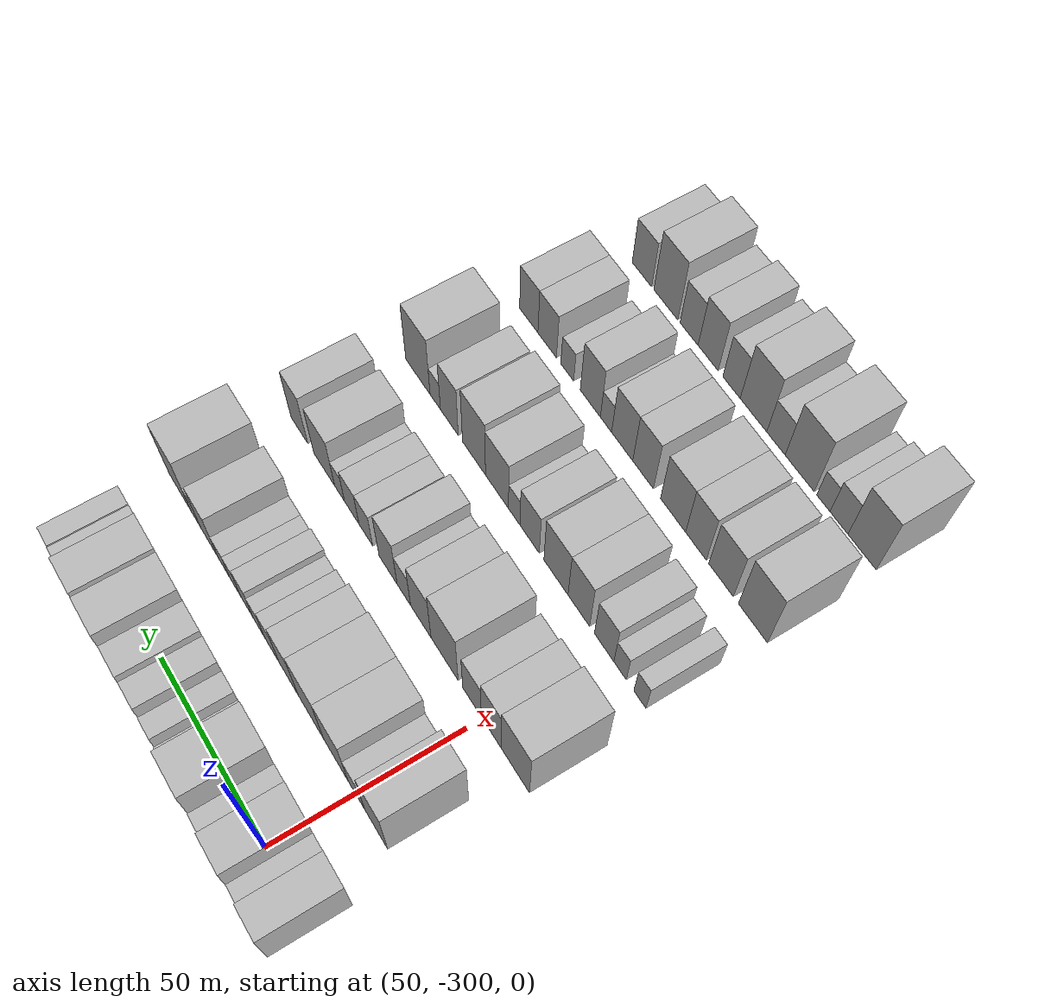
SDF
<sdf version="1.6">
 <world name="default">
  <model name="building_27">
   <static>1</static>
   <pose>50.0000 -315.9549 0 0.000000 0.000000 0.000000</pose>
   <link name="link">
    <pose>0 0 9.00 0 0 0</pose>
    <collision name="collision"><geometry><box><size>20.0000 8.7158 18.0000</size></box></geometry></collision>
    <visual name="visual">
     <cast_shadows>0</cast_shadows>
     <geometry><box><size>20.0000 8.7158 18.0000</size></box></geometry>
     <material>
      <script>
       <uri>model://HANNAS_wall/materials/scripts</uri>
       <uri>model://HANNAS_wall/materials/textures</uri>
       <name>vrc/HANNAS_wall</name>
      </script>
     </material>
    </visual>
   </link>
  </model>
  <model name="building_28">
   <static>1</static>
   <pose>50.0000 -308.7147 0 0.000000 0.000000 0.000000</pose>
   <link name="link">
    <pose>0 0 6.00 0 0 0</pose>
    <collision name="collision"><geometry><box><size>20.0000 5.7645 12.0000</size></box></geometry></collision>
    <visual name="visual">
     <cast_shadows>0</cast_shadows>
     <geometry><box><size>20.0000 5.7645 12.0000</size></box></geometry>
     <material>
      <script>
       <uri>model://HANNAS_wall/materials/scripts</uri>
       <uri>model://HANNAS_wall/materials/textures</uri>
       <name>vrc/HANNAS_wall</name>
      </script>
     </material>
    </visual>
   </link>
  </model>
  <model name="building_29">
   <static>1</static>
   <pose>50.0000 -300.9488 0 0.000000 0.000000 0.000000</pose>
   <link name="link">
    <pose>0 0 10.50 0 0 0</pose>
    <collision name="collision"><geometry><box><size>20.0000 9.7675 21.0000</size></box></geometry></collision>
    <visual name="visual">
     <cast_shadows>0</cast_shadows>
     <geometry><box><size>20.0000 9.7675 21.0000</size></box></geometry>
     <material>
      <script>
       <uri>model://HANNAS_wall/materials/scripts</uri>
       <uri>model://HANNAS_wall/materials/textures</uri>
       <name>vrc/HANNAS_wall</name>
      </script>
     </material>
    </visual>
   </link>
  </model>
  <model name="building_30">
   <static>1</static>
   <pose>50.0000 -292.9316 0 0.000000 0.000000 0.000000</pose>
   <link name="link">
    <pose>0 0 7.50 0 0 0</pose>
    <collision name="collision"><geometry><box><size>20.0000 6.2669 15.0000</size></box></geometry></collision>
    <visual name="visual">
     <cast_shadows>0</cast_shadows>
     <geometry><box><size>20.0000 6.2669 15.0000</size></box></geometry>
     <material>
      <script>
       <uri>model://HANNAS_wall/materials/scripts</uri>
       <uri>model://HANNAS_wall/materials/textures</uri>
       <name>vrc/HANNAS_wall</name>
      </script>
     </material>
    </visual>
   </link>
  </model>
  <model name="building_31">
   <static>1</static>
   <pose>50.0000 -283.1510 0 0.000000 0.000000 0.000000</pose>
   <link name="link">
    <pose>0 0 12.00 0 0 0</pose>
    <collision name="collision"><geometry><box><size>20.0000 11.2944 24.0000</size></box></geometry></collision>
    <visual name="visual">
     <cast_shadows>0</cast_shadows>
     <geometry><box><size>20.0000 11.2944 24.0000</size></box></geometry>
     <material>
      <script>
       <uri>model://HANNAS_wall/materials/scripts</uri>
       <uri>model://HANNAS_wall/materials/textures</uri>
       <name>vrc/HANNAS_wall</name>
      </script>
     </material>
    </visual>
   </link>
  </model>
  <model name="building_32">
   <static>1</static>
   <pose>50.0000 -274.9794 0 0.000000 0.000000 0.000000</pose>
   <link name="link">
    <pose>0 0 6.00 0 0 0</pose>
    <collision name="collision"><geometry><box><size>20.0000 5.0487 12.0000</size></box></geometry></collision>
    <visual name="visual">
     <cast_shadows>0</cast_shadows>
     <geometry><box><size>20.0000 5.0487 12.0000</size></box></geometry>
     <material>
      <script>
       <uri>model://HANNAS_wall/materials/scripts</uri>
       <uri>model://HANNAS_wall/materials/textures</uri>
       <name>vrc/HANNAS_wall</name>
      </script>
     </material>
    </visual>
   </link>
  </model>
  <model name="building_33">
   <static>1</static>
   <pose>50.0000 -267.6295 0 0.000000 0.000000 0.000000</pose>
   <link name="link">
    <pose>0 0 6.00 0 0 0</pose>
    <collision name="collision"><geometry><box><size>20.0000 5.6511 12.0000</size></box></geometry></collision>
    <visual name="visual">
     <cast_shadows>0</cast_shadows>
     <geometry><box><size>20.0000 5.6511 12.0000</size></box></geometry>
     <material>
      <script>
       <uri>model://HANNAS_wall/materials/scripts</uri>
       <uri>model://HANNAS_wall/materials/textures</uri>
       <name>vrc/HANNAS_wall</name>
      </script>
     </material>
    </visual>
   </link>
  </model>
  <model name="building_34">
   <static>1</static>
   <pose>50.0000 -260.2772 0 0.000000 0.000000 0.000000</pose>
   <link name="link">
    <pose>0 0 7.50 0 0 0</pose>
    <collision name="collision"><geometry><box><size>20.0000 7.0536 15.0000</size></box></geometry></collision>
    <visual name="visual">
     <cast_shadows>0</cast_shadows>
     <geometry><box><size>20.0000 7.0536 15.0000</size></box></geometry>
     <material>
      <script>
       <uri>model://HANNAS_wall/materials/scripts</uri>
       <uri>model://HANNAS_wall/materials/textures</uri>
       <name>vrc/HANNAS_wall</name>
      </script>
     </material>
    </visual>
   </link>
  </model>
  <model name="building_35">
   <static>1</static>
   <pose>50.0000 -252.6616 0 0.000000 0.000000 0.000000</pose>
   <link name="link">
    <pose>0 0 9.00 0 0 0</pose>
    <collision name="collision"><geometry><box><size>20.0000 8.1775 18.0000</size></box></geometry></collision>
    <visual name="visual">
     <cast_shadows>0</cast_shadows>
     <geometry><box><size>20.0000 8.1775 18.0000</size></box></geometry>
     <material>
      <script>
       <uri>model://HANNAS_wall/materials/scripts</uri>
       <uri>model://HANNAS_wall/materials/textures</uri>
       <name>vrc/HANNAS_wall</name>
      </script>
     </material>
    </visual>
   </link>
  </model>
  <model name="building_36">
   <static>1</static>
   <pose>50.0000 -243.4443 0 0.000000 0.000000 0.000000</pose>
   <link name="link">
    <pose>0 0 12.00 0 0 0</pose>
    <collision name="collision"><geometry><box><size>20.0000 10.2570 24.0000</size></box></geometry></collision>
    <visual name="visual">
     <cast_shadows>0</cast_shadows>
     <geometry><box><size>20.0000 10.2570 24.0000</size></box></geometry>
     <material>
      <script>
       <uri>model://HANNAS_wall/materials/scripts</uri>
       <uri>model://HANNAS_wall/materials/textures</uri>
       <name>vrc/HANNAS_wall</name>
      </script>
     </material>
    </visual>
   </link>
  </model>
  <model name="building_37">
   <static>1</static>
   <pose>50.0000 -232.4229 0 0.000000 0.000000 0.000000</pose>
   <link name="link">
    <pose>0 0 12.00 0 0 0</pose>
    <collision name="collision"><geometry><box><size>20.0000 9.7857 24.0000</size></box></geometry></collision>
    <visual name="visual">
     <cast_shadows>0</cast_shadows>
     <geometry><box><size>20.0000 9.7857 24.0000</size></box></geometry>
     <material>
      <script>
       <uri>model://HANNAS_wall/materials/scripts</uri>
       <uri>model://HANNAS_wall/materials/textures</uri>
       <name>vrc/HANNAS_wall</name>
      </script>
     </material>
    </visual>
   </link>
  </model>
  <model name="building_38">
   <static>1</static>
   <pose>50.0000 -223.2568 0 0.000000 0.000000 0.000000</pose>
   <link name="link">
    <pose>0 0 7.50 0 0 0</pose>
    <collision name="collision"><geometry><box><size>20.0000 6.5466 15.0000</size></box></geometry></collision>
    <visual name="visual">
     <cast_shadows>0</cast_shadows>
     <geometry><box><size>20.0000 6.5466 15.0000</size></box></geometry>
     <material>
      <script>
       <uri>model://HANNAS_wall/materials/scripts</uri>
       <uri>model://HANNAS_wall/materials/textures</uri>
       <name>vrc/HANNAS_wall</name>
      </script>
     </material>
    </visual>
   </link>
  </model>
  <model name="building_39">
   <static>1</static>
   <pose>50.0000 -215.2266 0 0.000000 0.000000 0.000000</pose>
   <link name="link">
    <pose>0 0 6.00 0 0 0</pose>
    <collision name="collision"><geometry><box><size>20.0000 5.5136 12.0000</size></box></geometry></collision>
    <visual name="visual">
     <cast_shadows>0</cast_shadows>
     <geometry><box><size>20.0000 5.5136 12.0000</size></box></geometry>
     <material>
      <script>
       <uri>model://HANNAS_wall/materials/scripts</uri>
       <uri>model://HANNAS_wall/materials/textures</uri>
       <name>vrc/HANNAS_wall</name>
      </script>
     </material>
    </visual>
   </link>
  </model>
  <model name="building_153">
   <static>1</static>
   <pose>82.0000 -309.0756 0 0.000000 0.000000 0.000000</pose>
   <link name="link">
    <pose>0 0 12.00 0 0 0</pose>
    <collision name="collision"><geometry><box><size>20.0000 9.7972 24.0000</size></box></geometry></collision>
    <visual name="visual">
     <cast_shadows>0</cast_shadows>
     <geometry><box><size>20.0000 9.7972 24.0000</size></box></geometry>
     <material>
      <script>
       <uri>model://HANNAS_wall/materials/scripts</uri>
       <uri>model://HANNAS_wall/materials/textures</uri>
       <name>vrc/HANNAS_wall</name>
      </script>
     </material>
    </visual>
   </link>
  </model>
  <model name="building_154">
   <static>1</static>
   <pose>82.0000 -300.4945 0 0.000000 0.000000 0.000000</pose>
   <link name="link">
    <pose>0 0 7.50 0 0 0</pose>
    <collision name="collision"><geometry><box><size>20.0000 7.3651 15.0000</size></box></geometry></collision>
    <visual name="visual">
     <cast_shadows>0</cast_shadows>
     <geometry><box><size>20.0000 7.3651 15.0000</size></box></geometry>
     <material>
      <script>
       <uri>model://HANNAS_wall/materials/scripts</uri>
       <uri>model://HANNAS_wall/materials/textures</uri>
       <name>vrc/HANNAS_wall</name>
      </script>
     </material>
    </visual>
   </link>
  </model>
  <model name="building_155">
   <static>1</static>
   <pose>82.0000 -291.3366 0 0.000000 0.000000 0.000000</pose>
   <link name="link">
    <pose>0 0 12.00 0 0 0</pose>
    <collision name="collision"><geometry><box><size>20.0000 10.9506 24.0000</size></box></geometry></collision>
    <visual name="visual">
     <cast_shadows>0</cast_shadows>
     <geometry><box><size>20.0000 10.9506 24.0000</size></box></geometry>
     <material>
      <script>
       <uri>model://HANNAS_wall/materials/scripts</uri>
       <uri>model://HANNAS_wall/materials/textures</uri>
       <name>vrc/HANNAS_wall</name>
      </script>
     </material>
    </visual>
   </link>
  </model>
  <model name="building_156">
   <static>1</static>
   <pose>82.0000 -279.9909 0 0.000000 0.000000 0.000000</pose>
   <link name="link">
    <pose>0 0 12.00 0 0 0</pose>
    <collision name="collision"><geometry><box><size>20.0000 11.7407 24.0000</size></box></geometry></collision>
    <visual name="visual">
     <cast_shadows>0</cast_shadows>
     <geometry><box><size>20.0000 11.7407 24.0000</size></box></geometry>
     <material>
      <script>
       <uri>model://HANNAS_wall/materials/scripts</uri>
       <uri>model://HANNAS_wall/materials/textures</uri>
       <name>vrc/HANNAS_wall</name>
      </script>
     </material>
    </visual>
   </link>
  </model>
  <model name="building_157">
   <static>1</static>
   <pose>82.0000 -269.6124 0 0.000000 0.000000 0.000000</pose>
   <link name="link">
    <pose>0 0 10.50 0 0 0</pose>
    <collision name="collision"><geometry><box><size>20.0000 9.0163 21.0000</size></box></geometry></collision>
    <visual name="visual">
     <cast_shadows>0</cast_shadows>
     <geometry><box><size>20.0000 9.0163 21.0000</size></box></geometry>
     <material>
      <script>
       <uri>model://HANNAS_wall/materials/scripts</uri>
       <uri>model://HANNAS_wall/materials/textures</uri>
       <name>vrc/HANNAS_wall</name>
      </script>
     </material>
    </visual>
   </link>
  </model>
  <model name="building_158">
   <static>1</static>
   <pose>82.0000 -261.6479 0 0.000000 0.000000 0.000000</pose>
   <link name="link">
    <pose>0 0 7.50 0 0 0</pose>
    <collision name="collision"><geometry><box><size>20.0000 6.9128 15.0000</size></box></geometry></collision>
    <visual name="visual">
     <cast_shadows>0</cast_shadows>
     <geometry><box><size>20.0000 6.9128 15.0000</size></box></geometry>
     <material>
      <script>
       <uri>model://HANNAS_wall/materials/scripts</uri>
       <uri>model://HANNAS_wall/materials/textures</uri>
       <name>vrc/HANNAS_wall</name>
      </script>
     </material>
    </visual>
   </link>
  </model>
  <model name="building_159">
   <static>1</static>
   <pose>82.0000 -255.3760 0 0.000000 0.000000 0.000000</pose>
   <link name="link">
    <pose>0 0 6.00 0 0 0</pose>
    <collision name="collision"><geometry><box><size>20.0000 5.6309 12.0000</size></box></geometry></collision>
    <visual name="visual">
     <cast_shadows>0</cast_shadows>
     <geometry><box><size>20.0000 5.6309 12.0000</size></box></geometry>
     <material>
      <script>
       <uri>model://HANNAS_wall/materials/scripts</uri>
       <uri>model://HANNAS_wall/materials/textures</uri>
       <name>vrc/HANNAS_wall</name>
      </script>
     </material>
    </visual>
   </link>
  </model>
  <model name="building_160">
   <static>1</static>
   <pose>82.0000 -249.4797 0 0.000000 0.000000 0.000000</pose>
   <link name="link">
    <pose>0 0 7.50 0 0 0</pose>
    <collision name="collision"><geometry><box><size>20.0000 6.1616 15.0000</size></box></geometry></collision>
    <visual name="visual">
     <cast_shadows>0</cast_shadows>
     <geometry><box><size>20.0000 6.1616 15.0000</size></box></geometry>
     <material>
      <script>
       <uri>model://HANNAS_wall/materials/scripts</uri>
       <uri>model://HANNAS_wall/materials/textures</uri>
       <name>vrc/HANNAS_wall</name>
      </script>
     </material>
    </visual>
   </link>
  </model>
  <model name="building_161">
   <static>1</static>
   <pose>82.0000 -243.6307 0 0.000000 0.000000 0.000000</pose>
   <link name="link">
    <pose>0 0 6.00 0 0 0</pose>
    <collision name="collision"><geometry><box><size>20.0000 5.5363 12.0000</size></box></geometry></collision>
    <visual name="visual">
     <cast_shadows>0</cast_shadows>
     <geometry><box><size>20.0000 5.5363 12.0000</size></box></geometry>
     <material>
      <script>
       <uri>model://HANNAS_wall/materials/scripts</uri>
       <uri>model://HANNAS_wall/materials/textures</uri>
       <name>vrc/HANNAS_wall</name>
      </script>
     </material>
    </visual>
   </link>
  </model>
  <model name="building_162">
   <static>1</static>
   <pose>82.0000 -238.0067 0 0.000000 0.000000 0.000000</pose>
   <link name="link">
    <pose>0 0 6.00 0 0 0</pose>
    <collision name="collision"><geometry><box><size>20.0000 5.7118 12.0000</size></box></geometry></collision>
    <visual name="visual">
     <cast_shadows>0</cast_shadows>
     <geometry><box><size>20.0000 5.7118 12.0000</size></box></geometry>
     <material>
      <script>
       <uri>model://HANNAS_wall/materials/scripts</uri>
       <uri>model://HANNAS_wall/materials/textures</uri>
       <name>vrc/HANNAS_wall</name>
      </script>
     </material>
    </visual>
   </link>
  </model>
  <model name="building_163">
   <static>1</static>
   <pose>82.0000 -230.5059 0 0.000000 0.000000 0.000000</pose>
   <link name="link">
    <pose>0 0 10.50 0 0 0</pose>
    <collision name="collision"><geometry><box><size>20.0000 9.2897 21.0000</size></box></geometry></collision>
    <visual name="visual">
     <cast_shadows>0</cast_shadows>
     <geometry><box><size>20.0000 9.2897 21.0000</size></box></geometry>
     <material>
      <script>
       <uri>model://HANNAS_wall/materials/scripts</uri>
       <uri>model://HANNAS_wall/materials/textures</uri>
       <name>vrc/HANNAS_wall</name>
      </script>
     </material>
    </visual>
   </link>
  </model>
  <model name="building_164">
   <static>1</static>
   <pose>82.0000 -223.3674 0 0.000000 0.000000 0.000000</pose>
   <link name="link">
    <pose>0 0 6.00 0 0 0</pose>
    <collision name="collision"><geometry><box><size>20.0000 4.9873 12.0000</size></box></geometry></collision>
    <visual name="visual">
     <cast_shadows>0</cast_shadows>
     <geometry><box><size>20.0000 4.9873 12.0000</size></box></geometry>
     <material>
      <script>
       <uri>model://HANNAS_wall/materials/scripts</uri>
       <uri>model://HANNAS_wall/materials/textures</uri>
       <name>vrc/HANNAS_wall</name>
      </script>
     </material>
    </visual>
   </link>
  </model>
  <model name="building_165">
   <static>1</static>
   <pose>82.0000 -214.9069 0 0.000000 0.000000 0.000000</pose>
   <link name="link">
    <pose>0 0 12.00 0 0 0</pose>
    <collision name="collision"><geometry><box><size>20.0000 11.9338 24.0000</size></box></geometry></collision>
    <visual name="visual">
     <cast_shadows>0</cast_shadows>
     <geometry><box><size>20.0000 11.9338 24.0000</size></box></geometry>
     <material>
      <script>
       <uri>model://HANNAS_wall/materials/scripts</uri>
       <uri>model://HANNAS_wall/materials/textures</uri>
       <name>vrc/HANNAS_wall</name>
      </script>
     </material>
    </visual>
   </link>
  </model>
  <model name="building_273">
   <static>1</static>
   <pose>114.0000 -313.6617 0 0.000000 0.000000 0.000000</pose>
   <link name="link">
    <pose>0 0 12.00 0 0 0</pose>
    <collision name="collision"><geometry><box><size>20.0000 11.4780 24.0000</size></box></geometry></collision>
    <visual name="visual">
     <cast_shadows>0</cast_shadows>
     <geometry><box><size>20.0000 11.4780 24.0000</size></box></geometry>
     <material>
      <script>
       <uri>model://HANNAS_wall/materials/scripts</uri>
       <uri>model://HANNAS_wall/materials/textures</uri>
       <name>vrc/HANNAS_wall</name>
      </script>
     </material>
    </visual>
   </link>
  </model>
  <model name="building_274">
   <static>1</static>
   <pose>114.0000 -303.6868 0 0.000000 0.000000 0.000000</pose>
   <link name="link">
    <pose>0 0 10.50 0 0 0</pose>
    <collision name="collision"><geometry><box><size>20.0000 8.4719 21.0000</size></box></geometry></collision>
    <visual name="visual">
     <cast_shadows>0</cast_shadows>
     <geometry><box><size>20.0000 8.4719 21.0000</size></box></geometry>
     <material>
      <script>
       <uri>model://HANNAS_wall/materials/scripts</uri>
       <uri>model://HANNAS_wall/materials/textures</uri>
       <name>vrc/HANNAS_wall</name>
      </script>
     </material>
    </visual>
   </link>
  </model>
  <model name="building_275">
   <static>1</static>
   <pose>114.0000 -295.4790 0 0.000000 0.000000 0.000000</pose>
   <link name="link">
    <pose>0 0 9.00 0 0 0</pose>
    <collision name="collision"><geometry><box><size>20.0000 7.9437 18.0000</size></box></geometry></collision>
    <visual name="visual">
     <cast_shadows>0</cast_shadows>
     <geometry><box><size>20.0000 7.9437 18.0000</size></box></geometry>
     <material>
      <script>
       <uri>model://HANNAS_wall/materials/scripts</uri>
       <uri>model://HANNAS_wall/materials/textures</uri>
       <name>vrc/HANNAS_wall</name>
      </script>
     </material>
    </visual>
   </link>
  </model>
  <model name="building_276">
   <static>1</static>
   <pose>114.0000 -283.5557 0 0.000000 0.000000 0.000000</pose>
   <link name="link">
    <pose>0 0 12.00 0 0 0</pose>
    <collision name="collision"><geometry><box><size>20.0000 11.9028 24.0000</size></box></geometry></collision>
    <visual name="visual">
     <cast_shadows>0</cast_shadows>
     <geometry><box><size>20.0000 11.9028 24.0000</size></box></geometry>
     <material>
      <script>
       <uri>model://HANNAS_wall/materials/scripts</uri>
       <uri>model://HANNAS_wall/materials/textures</uri>
       <name>vrc/HANNAS_wall</name>
      </script>
     </material>
    </visual>
   </link>
  </model>
  <model name="building_277">
   <static>1</static>
   <pose>114.0000 -273.0124 0 0.000000 0.000000 0.000000</pose>
   <link name="link">
    <pose>0 0 10.50 0 0 0</pose>
    <collision name="collision"><geometry><box><size>20.0000 9.1837 21.0000</size></box></geometry></collision>
    <visual name="visual">
     <cast_shadows>0</cast_shadows>
     <geometry><box><size>20.0000 9.1837 21.0000</size></box></geometry>
     <material>
      <script>
       <uri>model://HANNAS_wall/materials/scripts</uri>
       <uri>model://HANNAS_wall/materials/textures</uri>
       <name>vrc/HANNAS_wall</name>
      </script>
     </material>
    </visual>
   </link>
  </model>
  <model name="building_278">
   <static>1</static>
   <pose>114.0000 -265.3630 0 0.000000 0.000000 0.000000</pose>
   <link name="link">
    <pose>0 0 7.50 0 0 0</pose>
    <collision name="collision"><geometry><box><size>20.0000 6.1151 15.0000</size></box></geometry></collision>
    <visual name="visual">
     <cast_shadows>0</cast_shadows>
     <geometry><box><size>20.0000 6.1151 15.0000</size></box></geometry>
     <material>
      <script>
       <uri>model://HANNAS_wall/materials/scripts</uri>
       <uri>model://HANNAS_wall/materials/textures</uri>
       <name>vrc/HANNAS_wall</name>
      </script>
     </material>
    </visual>
   </link>
  </model>
  <model name="building_279">
   <static>1</static>
   <pose>114.0000 -258.0738 0 0.000000 0.000000 0.000000</pose>
   <link name="link">
    <pose>0 0 10.50 0 0 0</pose>
    <collision name="collision"><geometry><box><size>20.0000 8.4634 21.0000</size></box></geometry></collision>
    <visual name="visual">
     <cast_shadows>0</cast_shadows>
     <geometry><box><size>20.0000 8.4634 21.0000</size></box></geometry>
     <material>
      <script>
       <uri>model://HANNAS_wall/materials/scripts</uri>
       <uri>model://HANNAS_wall/materials/textures</uri>
       <name>vrc/HANNAS_wall</name>
      </script>
     </material>
    </visual>
   </link>
  </model>
  <model name="building_280">
   <static>1</static>
   <pose>114.0000 -247.5877 0 0.000000 0.000000 0.000000</pose>
   <link name="link">
    <pose>0 0 7.50 0 0 0</pose>
    <collision name="collision"><geometry><box><size>20.0000 6.5088 15.0000</size></box></geometry></collision>
    <visual name="visual">
     <cast_shadows>0</cast_shadows>
     <geometry><box><size>20.0000 6.5088 15.0000</size></box></geometry>
     <material>
      <script>
       <uri>model://HANNAS_wall/materials/scripts</uri>
       <uri>model://HANNAS_wall/materials/textures</uri>
       <name>vrc/HANNAS_wall</name>
      </script>
     </material>
    </visual>
   </link>
  </model>
  <model name="building_281">
   <static>1</static>
   <pose>114.0000 -240.8393 0 0.000000 0.000000 0.000000</pose>
   <link name="link">
    <pose>0 0 7.50 0 0 0</pose>
    <collision name="collision"><geometry><box><size>20.0000 6.9880 15.0000</size></box></geometry></collision>
    <visual name="visual">
     <cast_shadows>0</cast_shadows>
     <geometry><box><size>20.0000 6.9880 15.0000</size></box></geometry>
     <material>
      <script>
       <uri>model://HANNAS_wall/materials/scripts</uri>
       <uri>model://HANNAS_wall/materials/textures</uri>
       <name>vrc/HANNAS_wall</name>
      </script>
     </material>
    </visual>
   </link>
  </model>
  <model name="building_282">
   <static>1</static>
   <pose>114.0000 -234.9239 0 0.000000 0.000000 0.000000</pose>
   <link name="link">
    <pose>0 0 6.00 0 0 0</pose>
    <collision name="collision"><geometry><box><size>20.0000 4.8427 12.0000</size></box></geometry></collision>
    <visual name="visual">
     <cast_shadows>0</cast_shadows>
     <geometry><box><size>20.0000 4.8427 12.0000</size></box></geometry>
     <material>
      <script>
       <uri>model://HANNAS_wall/materials/scripts</uri>
       <uri>model://HANNAS_wall/materials/textures</uri>
       <name>vrc/HANNAS_wall</name>
      </script>
     </material>
    </visual>
   </link>
  </model>
  <model name="building_283">
   <static>1</static>
   <pose>114.0000 -227.2708 0 0.000000 0.000000 0.000000</pose>
   <link name="link">
    <pose>0 0 10.50 0 0 0</pose>
    <collision name="collision"><geometry><box><size>20.0000 10.4635 21.0000</size></box></geometry></collision>
    <visual name="visual">
     <cast_shadows>0</cast_shadows>
     <geometry><box><size>20.0000 10.4635 21.0000</size></box></geometry>
     <material>
      <script>
       <uri>model://HANNAS_wall/materials/scripts</uri>
       <uri>model://HANNAS_wall/materials/textures</uri>
       <name>vrc/HANNAS_wall</name>
      </script>
     </material>
    </visual>
   </link>
  </model>
  <model name="building_284">
   <static>1</static>
   <pose>114.0000 -214.7949 0 0.000000 0.000000 0.000000</pose>
   <link name="link">
    <pose>0 0 10.50 0 0 0</pose>
    <collision name="collision"><geometry><box><size>20.0000 8.4882 21.0000</size></box></geometry></collision>
    <visual name="visual">
     <cast_shadows>0</cast_shadows>
     <geometry><box><size>20.0000 8.4882 21.0000</size></box></geometry>
     <material>
      <script>
       <uri>model://HANNAS_wall/materials/scripts</uri>
       <uri>model://HANNAS_wall/materials/textures</uri>
       <name>vrc/HANNAS_wall</name>
      </script>
     </material>
    </visual>
   </link>
  </model>
  <model name="building_396">
   <static>1</static>
   <pose>146.0000 -314.4197 0 0.000000 0.000000 0.000000</pose>
   <link name="link">
    <pose>0 0 6.00 0 0 0</pose>
    <collision name="collision"><geometry><box><size>20.0000 4.8098 12.0000</size></box></geometry></collision>
    <visual name="visual">
     <cast_shadows>0</cast_shadows>
     <geometry><box><size>20.0000 4.8098 12.0000</size></box></geometry>
     <material>
      <script>
       <uri>model://HANNAS_wall/materials/scripts</uri>
       <uri>model://HANNAS_wall/materials/textures</uri>
       <name>vrc/HANNAS_wall</name>
      </script>
     </material>
    </visual>
   </link>
  </model>
  <model name="building_397">
   <static>1</static>
   <pose>146.0000 -306.5005 0 0.000000 0.000000 0.000000</pose>
   <link name="link">
    <pose>0 0 6.00 0 0 0</pose>
    <collision name="collision"><geometry><box><size>20.0000 5.0286 12.0000</size></box></geometry></collision>
    <visual name="visual">
     <cast_shadows>0</cast_shadows>
     <geometry><box><size>20.0000 5.0286 12.0000</size></box></geometry>
     <material>
      <script>
       <uri>model://HANNAS_wall/materials/scripts</uri>
       <uri>model://HANNAS_wall/materials/textures</uri>
       <name>vrc/HANNAS_wall</name>
      </script>
     </material>
    </visual>
   </link>
  </model>
  <model name="building_398">
   <static>1</static>
   <pose>146.0000 -300.0255 0 0.000000 0.000000 0.000000</pose>
   <link name="link">
    <pose>0 0 9.00 0 0 0</pose>
    <collision name="collision"><geometry><box><size>20.0000 7.9213 18.0000</size></box></geometry></collision>
    <visual name="visual">
     <cast_shadows>0</cast_shadows>
     <geometry><box><size>20.0000 7.9213 18.0000</size></box></geometry>
     <material>
      <script>
       <uri>model://HANNAS_wall/materials/scripts</uri>
       <uri>model://HANNAS_wall/materials/textures</uri>
       <name>vrc/HANNAS_wall</name>
      </script>
     </material>
    </visual>
   </link>
  </model>
  <model name="building_399">
   <static>1</static>
   <pose>146.0000 -289.5277 0 0.000000 0.000000 0.000000</pose>
   <link name="link">
    <pose>0 0 10.50 0 0 0</pose>
    <collision name="collision"><geometry><box><size>20.0000 9.0743 21.0000</size></box></geometry></collision>
    <visual name="visual">
     <cast_shadows>0</cast_shadows>
     <geometry><box><size>20.0000 9.0743 21.0000</size></box></geometry>
     <material>
      <script>
       <uri>model://HANNAS_wall/materials/scripts</uri>
       <uri>model://HANNAS_wall/materials/textures</uri>
       <name>vrc/HANNAS_wall</name>
      </script>
     </material>
    </visual>
   </link>
  </model>
  <model name="building_400">
   <static>1</static>
   <pose>146.0000 -279.8355 0 0.000000 0.000000 0.000000</pose>
   <link name="link">
    <pose>0 0 10.50 0 0 0</pose>
    <collision name="collision"><geometry><box><size>20.0000 10.3102 21.0000</size></box></geometry></collision>
    <visual name="visual">
     <cast_shadows>0</cast_shadows>
     <geometry><box><size>20.0000 10.3102 21.0000</size></box></geometry>
     <material>
      <script>
       <uri>model://HANNAS_wall/materials/scripts</uri>
       <uri>model://HANNAS_wall/materials/textures</uri>
       <name>vrc/HANNAS_wall</name>
      </script>
     </material>
    </visual>
   </link>
  </model>
  <model name="building_401">
   <static>1</static>
   <pose>146.0000 -268.4397 0 0.000000 0.000000 0.000000</pose>
   <link name="link">
    <pose>0 0 9.00 0 0 0</pose>
    <collision name="collision"><geometry><box><size>20.0000 8.4812 18.0000</size></box></geometry></collision>
    <visual name="visual">
     <cast_shadows>0</cast_shadows>
     <geometry><box><size>20.0000 8.4812 18.0000</size></box></geometry>
     <material>
      <script>
       <uri>model://HANNAS_wall/materials/scripts</uri>
       <uri>model://HANNAS_wall/materials/textures</uri>
       <name>vrc/HANNAS_wall</name>
      </script>
     </material>
    </visual>
   </link>
  </model>
  <model name="building_402">
   <static>1</static>
   <pose>146.0000 -261.6444 0 0.000000 0.000000 0.000000</pose>
   <link name="link">
    <pose>0 0 6.00 0 0 0</pose>
    <collision name="collision"><geometry><box><size>20.0000 5.1094 12.0000</size></box></geometry></collision>
    <visual name="visual">
     <cast_shadows>0</cast_shadows>
     <geometry><box><size>20.0000 5.1094 12.0000</size></box></geometry>
     <material>
      <script>
       <uri>model://HANNAS_wall/materials/scripts</uri>
       <uri>model://HANNAS_wall/materials/textures</uri>
       <name>vrc/HANNAS_wall</name>
      </script>
     </material>
    </visual>
   </link>
  </model>
  <model name="building_403">
   <static>1</static>
   <pose>146.0000 -253.9069 0 0.000000 0.000000 0.000000</pose>
   <link name="link">
    <pose>0 0 10.50 0 0 0</pose>
    <collision name="collision"><geometry><box><size>20.0000 10.3656 21.0000</size></box></geometry></collision>
    <visual name="visual">
     <cast_shadows>0</cast_shadows>
     <geometry><box><size>20.0000 10.3656 21.0000</size></box></geometry>
     <material>
      <script>
       <uri>model://HANNAS_wall/materials/scripts</uri>
       <uri>model://HANNAS_wall/materials/textures</uri>
       <name>vrc/HANNAS_wall</name>
      </script>
     </material>
    </visual>
   </link>
  </model>
  <model name="building_404">
   <static>1</static>
   <pose>146.0000 -243.3977 0 0.000000 0.000000 0.000000</pose>
   <link name="link">
    <pose>0 0 12.00 0 0 0</pose>
    <collision name="collision"><geometry><box><size>20.0000 10.6529 24.0000</size></box></geometry></collision>
    <visual name="visual">
     <cast_shadows>0</cast_shadows>
     <geometry><box><size>20.0000 10.6529 24.0000</size></box></geometry>
     <material>
      <script>
       <uri>model://HANNAS_wall/materials/scripts</uri>
       <uri>model://HANNAS_wall/materials/textures</uri>
       <name>vrc/HANNAS_wall</name>
      </script>
     </material>
    </visual>
   </link>
  </model>
  <model name="building_405">
   <static>1</static>
   <pose>146.0000 -231.8570 0 0.000000 0.000000 0.000000</pose>
   <link name="link">
    <pose>0 0 10.50 0 0 0</pose>
    <collision name="collision"><geometry><box><size>20.0000 8.4284 21.0000</size></box></geometry></collision>
    <visual name="visual">
     <cast_shadows>0</cast_shadows>
     <geometry><box><size>20.0000 8.4284 21.0000</size></box></geometry>
     <material>
      <script>
       <uri>model://HANNAS_wall/materials/scripts</uri>
       <uri>model://HANNAS_wall/materials/textures</uri>
       <name>vrc/HANNAS_wall</name>
      </script>
     </material>
    </visual>
   </link>
  </model>
  <model name="building_406">
   <static>1</static>
   <pose>146.0000 -225.1506 0 0.000000 0.000000 0.000000</pose>
   <link name="link">
    <pose>0 0 6.00 0 0 0</pose>
    <collision name="collision"><geometry><box><size>20.0000 4.9844 12.0000</size></box></geometry></collision>
    <visual name="visual">
     <cast_shadows>0</cast_shadows>
     <geometry><box><size>20.0000 4.9844 12.0000</size></box></geometry>
     <material>
      <script>
       <uri>model://HANNAS_wall/materials/scripts</uri>
       <uri>model://HANNAS_wall/materials/textures</uri>
       <name>vrc/HANNAS_wall</name>
      </script>
     </material>
    </visual>
   </link>
  </model>
  <model name="building_407">
   <static>1</static>
   <pose>146.0000 -216.7399 0 0.000000 0.000000 0.000000</pose>
   <link name="link">
    <pose>0 0 12.00 0 0 0</pose>
    <collision name="collision"><geometry><box><size>20.0000 11.8370 24.0000</size></box></geometry></collision>
    <visual name="visual">
     <cast_shadows>0</cast_shadows>
     <geometry><box><size>20.0000 11.8370 24.0000</size></box></geometry>
     <material>
      <script>
       <uri>model://HANNAS_wall/materials/scripts</uri>
       <uri>model://HANNAS_wall/materials/textures</uri>
       <name>vrc/HANNAS_wall</name>
      </script>
     </material>
    </visual>
   </link>
  </model>
  <model name="building_518">
   <static>1</static>
   <pose>178.0000 -312.7843 0 0.000000 0.000000 0.000000</pose>
   <link name="link">
    <pose>0 0 12.00 0 0 0</pose>
    <collision name="collision"><geometry><box><size>20.0000 11.1656 24.0000</size></box></geometry></collision>
    <visual name="visual">
     <cast_shadows>0</cast_shadows>
     <geometry><box><size>20.0000 11.1656 24.0000</size></box></geometry>
     <material>
      <script>
       <uri>model://HANNAS_wall/materials/scripts</uri>
       <uri>model://HANNAS_wall/materials/textures</uri>
       <name>vrc/HANNAS_wall</name>
      </script>
     </material>
    </visual>
   </link>
  </model>
  <model name="building_519">
   <static>1</static>
   <pose>178.0000 -300.3270 0 0.000000 0.000000 0.000000</pose>
   <link name="link">
    <pose>0 0 10.50 0 0 0</pose>
    <collision name="collision"><geometry><box><size>20.0000 9.7489 21.0000</size></box></geometry></collision>
    <visual name="visual">
     <cast_shadows>0</cast_shadows>
     <geometry><box><size>20.0000 9.7489 21.0000</size></box></geometry>
     <material>
      <script>
       <uri>model://HANNAS_wall/materials/scripts</uri>
       <uri>model://HANNAS_wall/materials/textures</uri>
       <name>vrc/HANNAS_wall</name>
      </script>
     </material>
    </visual>
   </link>
  </model>
  <model name="building_520">
   <static>1</static>
   <pose>178.0000 -290.2517 0 0.000000 0.000000 0.000000</pose>
   <link name="link">
    <pose>0 0 10.50 0 0 0</pose>
    <collision name="collision"><geometry><box><size>20.0000 8.4018 21.0000</size></box></geometry></collision>
    <visual name="visual">
     <cast_shadows>0</cast_shadows>
     <geometry><box><size>20.0000 8.4018 21.0000</size></box></geometry>
     <material>
      <script>
       <uri>model://HANNAS_wall/materials/scripts</uri>
       <uri>model://HANNAS_wall/materials/textures</uri>
       <name>vrc/HANNAS_wall</name>
      </script>
     </material>
    </visual>
   </link>
  </model>
  <model name="building_521">
   <static>1</static>
   <pose>178.0000 -280.8690 0 0.000000 0.000000 0.000000</pose>
   <link name="link">
    <pose>0 0 10.50 0 0 0</pose>
    <collision name="collision"><geometry><box><size>20.0000 10.3636 21.0000</size></box></geometry></collision>
    <visual name="visual">
     <cast_shadows>0</cast_shadows>
     <geometry><box><size>20.0000 10.3636 21.0000</size></box></geometry>
     <material>
      <script>
       <uri>model://HANNAS_wall/materials/scripts</uri>
       <uri>model://HANNAS_wall/materials/textures</uri>
       <name>vrc/HANNAS_wall</name>
      </script>
     </material>
    </visual>
   </link>
  </model>
  <model name="building_522">
   <static>1</static>
   <pose>178.0000 -268.3009 0 0.000000 0.000000 0.000000</pose>
   <link name="link">
    <pose>0 0 10.50 0 0 0</pose>
    <collision name="collision"><geometry><box><size>20.0000 8.7727 21.0000</size></box></geometry></collision>
    <visual name="visual">
     <cast_shadows>0</cast_shadows>
     <geometry><box><size>20.0000 8.7727 21.0000</size></box></geometry>
     <material>
      <script>
       <uri>model://HANNAS_wall/materials/scripts</uri>
       <uri>model://HANNAS_wall/materials/textures</uri>
       <name>vrc/HANNAS_wall</name>
      </script>
     </material>
    </visual>
   </link>
  </model>
  <model name="building_523">
   <static>1</static>
   <pose>178.0000 -259.3290 0 0.000000 0.000000 0.000000</pose>
   <link name="link">
    <pose>0 0 10.50 0 0 0</pose>
    <collision name="collision"><geometry><box><size>20.0000 9.1711 21.0000</size></box></geometry></collision>
    <visual name="visual">
     <cast_shadows>0</cast_shadows>
     <geometry><box><size>20.0000 9.1711 21.0000</size></box></geometry>
     <material>
      <script>
       <uri>model://HANNAS_wall/materials/scripts</uri>
       <uri>model://HANNAS_wall/materials/textures</uri>
       <name>vrc/HANNAS_wall</name>
      </script>
     </material>
    </visual>
   </link>
  </model>
  <model name="building_524">
   <static>1</static>
   <pose>178.0000 -252.2695 0 0.000000 0.000000 0.000000</pose>
   <link name="link">
    <pose>0 0 6.00 0 0 0</pose>
    <collision name="collision"><geometry><box><size>20.0000 4.9479 12.0000</size></box></geometry></collision>
    <visual name="visual">
     <cast_shadows>0</cast_shadows>
     <geometry><box><size>20.0000 4.9479 12.0000</size></box></geometry>
     <material>
      <script>
       <uri>model://HANNAS_wall/materials/scripts</uri>
       <uri>model://HANNAS_wall/materials/textures</uri>
       <name>vrc/HANNAS_wall</name>
      </script>
     </material>
    </visual>
   </link>
  </model>
  <model name="building_525">
   <static>1</static>
   <pose>178.0000 -245.3121 0 0.000000 0.000000 0.000000</pose>
   <link name="link">
    <pose>0 0 10.50 0 0 0</pose>
    <collision name="collision"><geometry><box><size>20.0000 8.9671 21.0000</size></box></geometry></collision>
    <visual name="visual">
     <cast_shadows>0</cast_shadows>
     <geometry><box><size>20.0000 8.9671 21.0000</size></box></geometry>
     <material>
      <script>
       <uri>model://HANNAS_wall/materials/scripts</uri>
       <uri>model://HANNAS_wall/materials/textures</uri>
       <name>vrc/HANNAS_wall</name>
      </script>
     </material>
    </visual>
   </link>
  </model>
  <model name="building_526">
   <static>1</static>
   <pose>178.0000 -234.9042 0 0.000000 0.000000 0.000000</pose>
   <link name="link">
    <pose>0 0 6.00 0 0 0</pose>
    <collision name="collision"><geometry><box><size>20.0000 5.8487 12.0000</size></box></geometry></collision>
    <visual name="visual">
     <cast_shadows>0</cast_shadows>
     <geometry><box><size>20.0000 5.8487 12.0000</size></box></geometry>
     <material>
      <script>
       <uri>model://HANNAS_wall/materials/scripts</uri>
       <uri>model://HANNAS_wall/materials/textures</uri>
       <name>vrc/HANNAS_wall</name>
      </script>
     </material>
    </visual>
   </link>
  </model>
  <model name="building_527">
   <static>1</static>
   <pose>178.0000 -225.6841 0 0.000000 0.000000 0.000000</pose>
   <link name="link">
    <pose>0 0 9.00 0 0 0</pose>
    <collision name="collision"><geometry><box><size>20.0000 8.5915 18.0000</size></box></geometry></collision>
    <visual name="visual">
     <cast_shadows>0</cast_shadows>
     <geometry><box><size>20.0000 8.5915 18.0000</size></box></geometry>
     <material>
      <script>
       <uri>model://HANNAS_wall/materials/scripts</uri>
       <uri>model://HANNAS_wall/materials/textures</uri>
       <name>vrc/HANNAS_wall</name>
      </script>
     </material>
    </visual>
   </link>
  </model>
  <model name="building_528">
   <static>1</static>
   <pose>178.0000 -217.0746 0 0.000000 0.000000 0.000000</pose>
   <link name="link">
    <pose>0 0 9.00 0 0 0</pose>
    <collision name="collision"><geometry><box><size>20.0000 8.6273 18.0000</size></box></geometry></collision>
    <visual name="visual">
     <cast_shadows>0</cast_shadows>
     <geometry><box><size>20.0000 8.6273 18.0000</size></box></geometry>
     <material>
      <script>
       <uri>model://HANNAS_wall/materials/scripts</uri>
       <uri>model://HANNAS_wall/materials/textures</uri>
       <name>vrc/HANNAS_wall</name>
      </script>
     </material>
    </visual>
   </link>
  </model>
  <model name="building_633">
   <static>1</static>
   <pose>210.0000 -311.6856 0 0.000000 0.000000 0.000000</pose>
   <link name="link">
    <pose>0 0 12.00 0 0 0</pose>
    <collision name="collision"><geometry><box><size>20.0000 10.6532 24.0000</size></box></geometry></collision>
    <visual name="visual">
     <cast_shadows>0</cast_shadows>
     <geometry><box><size>20.0000 10.6532 24.0000</size></box></geometry>
     <material>
      <script>
       <uri>model://HANNAS_wall/materials/scripts</uri>
       <uri>model://HANNAS_wall/materials/textures</uri>
       <name>vrc/HANNAS_wall</name>
      </script>
     </material>
    </visual>
   </link>
  </model>
  <model name="building_634">
   <static>1</static>
   <pose>210.0000 -302.9271 0 0.000000 0.000000 0.000000</pose>
   <link name="link">
    <pose>0 0 7.50 0 0 0</pose>
    <collision name="collision"><geometry><box><size>20.0000 6.8638 15.0000</size></box></geometry></collision>
    <visual name="visual">
     <cast_shadows>0</cast_shadows>
     <geometry><box><size>20.0000 6.8638 15.0000</size></box></geometry>
     <material>
      <script>
       <uri>model://HANNAS_wall/materials/scripts</uri>
       <uri>model://HANNAS_wall/materials/textures</uri>
       <name>vrc/HANNAS_wall</name>
      </script>
     </material>
    </visual>
   </link>
  </model>
  <model name="building_635">
   <static>1</static>
   <pose>210.0000 -296.8995 0 0.000000 0.000000 0.000000</pose>
   <link name="link">
    <pose>0 0 6.00 0 0 0</pose>
    <collision name="collision"><geometry><box><size>20.0000 5.1913 12.0000</size></box></geometry></collision>
    <visual name="visual">
     <cast_shadows>0</cast_shadows>
     <geometry><box><size>20.0000 5.1913 12.0000</size></box></geometry>
     <material>
      <script>
       <uri>model://HANNAS_wall/materials/scripts</uri>
       <uri>model://HANNAS_wall/materials/textures</uri>
       <name>vrc/HANNAS_wall</name>
      </script>
     </material>
    </visual>
   </link>
  </model>
  <model name="building_636">
   <static>1</static>
   <pose>210.0000 -287.5372 0 0.000000 0.000000 0.000000</pose>
   <link name="link">
    <pose>0 0 12.00 0 0 0</pose>
    <collision name="collision"><geometry><box><size>20.0000 11.5333 24.0000</size></box></geometry></collision>
    <visual name="visual">
     <cast_shadows>0</cast_shadows>
     <geometry><box><size>20.0000 11.5333 24.0000</size></box></geometry>
     <material>
      <script>
       <uri>model://HANNAS_wall/materials/scripts</uri>
       <uri>model://HANNAS_wall/materials/textures</uri>
       <name>vrc/HANNAS_wall</name>
      </script>
     </material>
    </visual>
   </link>
  </model>
  <model name="building_637">
   <static>1</static>
   <pose>210.0000 -278.0458 0 0.000000 0.000000 0.000000</pose>
   <link name="link">
    <pose>0 0 7.50 0 0 0</pose>
    <collision name="collision"><geometry><box><size>20.0000 7.4495 15.0000</size></box></geometry></collision>
    <visual name="visual">
     <cast_shadows>0</cast_shadows>
     <geometry><box><size>20.0000 7.4495 15.0000</size></box></geometry>
     <material>
      <script>
       <uri>model://HANNAS_wall/materials/scripts</uri>
       <uri>model://HANNAS_wall/materials/textures</uri>
       <name>vrc/HANNAS_wall</name>
      </script>
     </material>
    </visual>
   </link>
  </model>
  <model name="building_638">
   <static>1</static>
   <pose>210.0000 -268.8273 0 0.000000 0.000000 0.000000</pose>
   <link name="link">
    <pose>0 0 12.00 0 0 0</pose>
    <collision name="collision"><geometry><box><size>20.0000 10.9875 24.0000</size></box></geometry></collision>
    <visual name="visual">
     <cast_shadows>0</cast_shadows>
     <geometry><box><size>20.0000 10.9875 24.0000</size></box></geometry>
     <material>
      <script>
       <uri>model://HANNAS_wall/materials/scripts</uri>
       <uri>model://HANNAS_wall/materials/textures</uri>
       <name>vrc/HANNAS_wall</name>
      </script>
     </material>
    </visual>
   </link>
  </model>
  <model name="building_639">
   <static>1</static>
   <pose>210.0000 -259.6867 0 0.000000 0.000000 0.000000</pose>
   <link name="link">
    <pose>0 0 9.00 0 0 0</pose>
    <collision name="collision"><geometry><box><size>20.0000 7.2937 18.0000</size></box></geometry></collision>
    <visual name="visual">
     <cast_shadows>0</cast_shadows>
     <geometry><box><size>20.0000 7.2937 18.0000</size></box></geometry>
     <material>
      <script>
       <uri>model://HANNAS_wall/materials/scripts</uri>
       <uri>model://HANNAS_wall/materials/textures</uri>
       <name>vrc/HANNAS_wall</name>
      </script>
     </material>
    </visual>
   </link>
  </model>
  <model name="building_640">
   <static>1</static>
   <pose>210.0000 -249.7251 0 0.000000 0.000000 0.000000</pose>
   <link name="link">
    <pose>0 0 10.50 0 0 0</pose>
    <collision name="collision"><geometry><box><size>20.0000 8.6296 21.0000</size></box></geometry></collision>
    <visual name="visual">
     <cast_shadows>0</cast_shadows>
     <geometry><box><size>20.0000 8.6296 21.0000</size></box></geometry>
     <material>
      <script>
       <uri>model://HANNAS_wall/materials/scripts</uri>
       <uri>model://HANNAS_wall/materials/textures</uri>
       <name>vrc/HANNAS_wall</name>
      </script>
     </material>
    </visual>
   </link>
  </model>
  <model name="building_641">
   <static>1</static>
   <pose>210.0000 -241.4793 0 0.000000 0.000000 0.000000</pose>
   <link name="link">
    <pose>0 0 9.00 0 0 0</pose>
    <collision name="collision"><geometry><box><size>20.0000 7.8619 18.0000</size></box></geometry></collision>
    <visual name="visual">
     <cast_shadows>0</cast_shadows>
     <geometry><box><size>20.0000 7.8619 18.0000</size></box></geometry>
     <material>
      <script>
       <uri>model://HANNAS_wall/materials/scripts</uri>
       <uri>model://HANNAS_wall/materials/textures</uri>
       <name>vrc/HANNAS_wall</name>
      </script>
     </material>
    </visual>
   </link>
  </model>
  <model name="building_642">
   <static>1</static>
   <pose>210.0000 -231.2001 0 0.000000 0.000000 0.000000</pose>
   <link name="link">
    <pose>0 0 12.00 0 0 0</pose>
    <collision name="collision"><geometry><box><size>20.0000 10.6964 24.0000</size></box></geometry></collision>
    <visual name="visual">
     <cast_shadows>0</cast_shadows>
     <geometry><box><size>20.0000 10.6964 24.0000</size></box></geometry>
     <material>
      <script>
       <uri>model://HANNAS_wall/materials/scripts</uri>
       <uri>model://HANNAS_wall/materials/textures</uri>
       <name>vrc/HANNAS_wall</name>
      </script>
     </material>
    </visual>
   </link>
  </model>
  <model name="building_643">
   <static>1</static>
   <pose>210.0000 -220.4366 0 0.000000 0.000000 0.000000</pose>
   <link name="link">
    <pose>0 0 9.00 0 0 0</pose>
    <collision name="collision"><geometry><box><size>20.0000 8.8306 18.0000</size></box></geometry></collision>
    <visual name="visual">
     <cast_shadows>0</cast_shadows>
     <geometry><box><size>20.0000 8.8306 18.0000</size></box></geometry>
     <material>
      <script>
       <uri>model://HANNAS_wall/materials/scripts</uri>
       <uri>model://HANNAS_wall/materials/textures</uri>
       <name>vrc/HANNAS_wall</name>
      </script>
     </material>
    </visual>
   </link>
  </model>
 </world>
</sdf>
